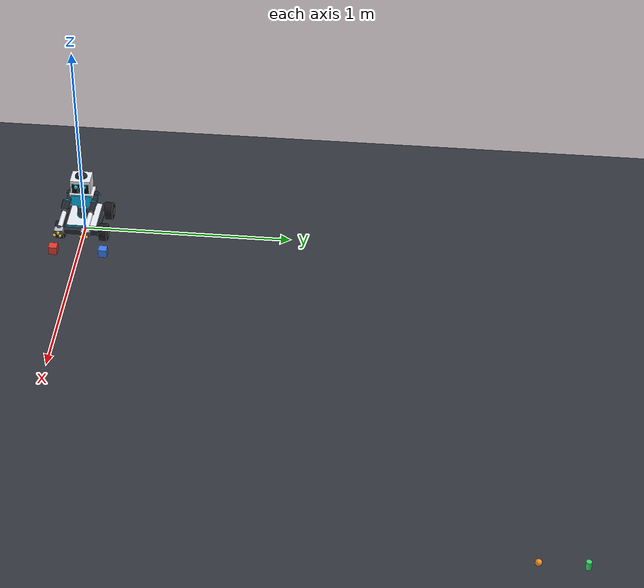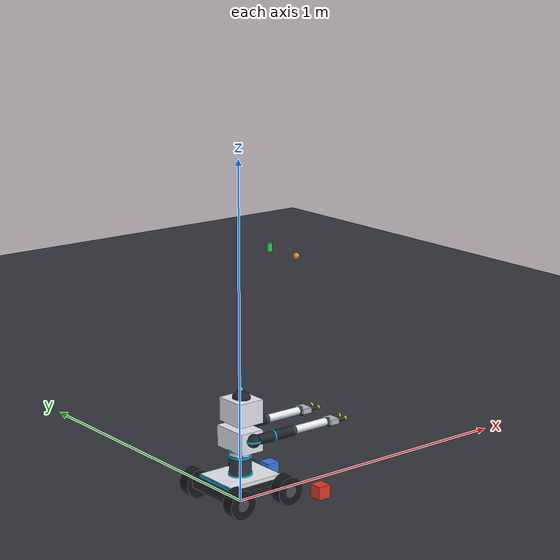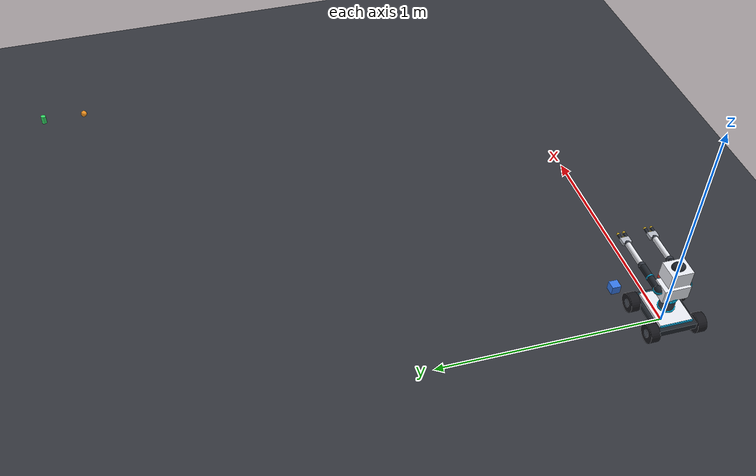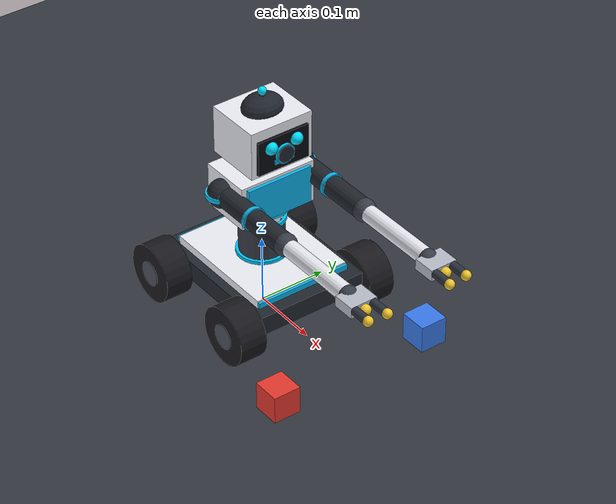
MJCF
<?xml version='1.0' encoding='utf-8'?>
<mujoco model="CARL Primate Scout">
  <option timestep="0.002" gravity="0 0 -9.81" solver="Newton" integrator="implicit" />
  <compiler angle="radian" coordinate="local" inertiafromgeom="true" />

  <default>
    <geom contype="1" conaffinity="1" condim="3" friction="1.2 0.005 0.0001" />
    <joint damping="0.15" frictionloss="0.003" />
    <position ctrllimited="true" forcelimited="true" forcerange="-8.0 8.0" />
    <velocity forcelimited="true" forcerange="-3.0 3.0" />
  </default>

  <asset>
    <!-- === Body Materials === -->
    <material name="shell_white" rgba="0.92 0.93 0.96 1.0" roughness="0.25" specular="0.5" />
    <material name="frame_dark" rgba="0.13 0.15 0.18 1.0" roughness="0.45" specular="0.3" />
    <material name="spine_segment" rgba="0.22 0.24 0.28 1.0" roughness="0.35" />
    <material name="joint_ring" rgba="0.00 0.78 0.98 1.0" emission="1.0" />
    <material name="accent_cyan" rgba="0.05 0.70 0.92 1.0" emission="0.6" />
    <material name="eye_glow" rgba="0.00 0.88 1.00 1.0" emission="2.0" />
    <material name="face_screen" rgba="0.03 0.04 0.06 1.0" roughness="0.05" specular="0.8" />

    <!-- === Hand Materials === -->
    <material name="palm_silver" rgba="0.72 0.74 0.78 1.0" roughness="0.25" specular="0.6" />
    <material name="finger_seg" rgba="0.18 0.20 0.24 1.0" roughness="0.4" />
    <material name="fingertip_gold" rgba="0.95 0.78 0.18 1.0" roughness="0.3" emission="0.15" />

    <!-- === Wheel Materials === -->
    <material name="wheel_rubber" rgba="0.10 0.10 0.12 1.0" roughness="0.95" />
    <material name="wheel_hub" rgba="0.30 0.32 0.36 1.0" roughness="0.35" specular="0.4" />
    <material name="wheel_roller" rgba="0.20 0.22 0.25 1.0" roughness="0.7" />

    <!-- === Environment === -->
    <material name="floor_mat" rgba="0.20 0.21 0.24 1.0" roughness="0.7" specular="0.15" />
    <material name="table_mat" rgba="0.35 0.25 0.18 1.0" roughness="0.8" />
    <material name="obj_blue" rgba="0.22 0.48 0.92 1.0" roughness="0.25" />
    <material name="obj_orange" rgba="0.96 0.58 0.12 1.0" roughness="0.25" />
    <material name="obj_green" rgba="0.20 0.85 0.40 1.0" roughness="0.3" />
    <material name="obj_red" rgba="0.90 0.22 0.18 1.0" roughness="0.25" />
  </asset>

  <!--                          WORLD                                     -->
  <worldbody>
    <light name="key_sun" pos="2 1.5 5" dir="-0.25 -0.2 -1" diffuse="0.92 0.90 0.88" castshadow="true" />
    <light name="fill_cool" pos="-2 -1 3.5" dir="0.3 0.15 -1" diffuse="0.35 0.40 0.50" castshadow="false" />
    <light name="rim_back" pos="0 -3 2" dir="0 0.5 -0.5" diffuse="0.20 0.25 0.30" castshadow="false" />
    <geom name="floor" type="plane" size="6 6 0.1" material="floor_mat" />

    <!-- === Manipulable Objects (on floor within reach) === -->
    <body name="obj_cube_0" pos="0.20 0.12 0.020">
      <freejoint name="fj_cube_0" />
      <geom name="gcube_0" type="box" size="0.020 0.020 0.020" mass="0.04"
            material="obj_blue" contype="4" conaffinity="13" friction="1.8 0.01 0.002" />
    </body>
    <body name="obj_cube_1" pos="0.20 -0.12 0.020">
      <freejoint name="fj_cube_1" />
      <geom name="gcube_1" type="box" size="0.020 0.020 0.020" mass="0.04"
            material="obj_red" contype="4" conaffinity="13" friction="1.8 0.01 0.002" />
    </body>
    <body name="obj_ball_0" pos="2.0 2.2 0.015">
      <freejoint name="fj_ball_0" />
      <geom name="gball_0" type="sphere" size="0.015" mass="0.02"
            material="obj_orange" contype="4" conaffinity="13" friction="1.2 0.01 0.002" />
    </body>
    <body name="obj_cylinder_0" pos="2.0 2.4 0.020">
      <freejoint name="fj_cyl_0" />
      <geom name="gcyl_0" type="cylinder" size="0.012 0.020" mass="0.03"
            material="obj_green" contype="4" conaffinity="13" friction="1.5 0.01 0.002" />
    </body>

    <!--              CARL PRIMATE SCOUT — MAIN BODY                    -->
    <body name="base_platform" pos="0 0 0.058">
      <freejoint name="root_joint" />

      <!-- ── Chassis ────────────────────────────────────────────────── -->
      <geom name="chassis_core" type="box" size="0.11 0.085 0.014"
            material="frame_dark" mass="2.0" contype="1" conaffinity="1" />
      <geom name="chassis_shell" type="box" size="0.09 0.072 0.006" pos="0 0 0.020"
            material="shell_white" mass="0.2" contype="0" conaffinity="0" />
      <!-- Edge accent strips -->
      <geom name="edge_front" type="box" size="0.002 0.072 0.004" pos="0.092 0 0.020"
            material="accent_cyan" contype="0" conaffinity="0" />
      <geom name="edge_back" type="box" size="0.002 0.072 0.004" pos="-0.092 0 0.020"
            material="accent_cyan" contype="0" conaffinity="0" />

      <!-- ── Mecanum Wheels (4 corners) ─────────────────────────────── -->
      <body name="wheel_FL" pos="0.085 0.105 -0.010">
        <joint name="w_fl" type="hinge" axis="0 1 0" damping="0.008" frictionloss="0.001" />
        <geom type="cylinder" size="0.042 0.020" euler="1.5708 0 0"
              material="wheel_rubber" friction="1.6" mass="0.10" contype="1" conaffinity="1" />
        <geom type="cylinder" size="0.018 0.021" euler="1.5708 0 0"
              material="wheel_hub" contype="0" conaffinity="0" />
        <!-- Roller visual accents (suggest mecanum) -->
        <geom type="capsule" fromto="0.030 0 -0.015  -0.030 0 0.015" size="0.005"
              material="wheel_roller" contype="0" conaffinity="0" />
        <geom type="capsule" fromto="-0.015 0 -0.030  0.015 0 0.030" size="0.005"
              material="wheel_roller" contype="0" conaffinity="0" />
      </body>
      <body name="wheel_FR" pos="0.085 -0.105 -0.010">
        <joint name="w_fr" type="hinge" axis="0 1 0" damping="0.008" frictionloss="0.001" />
        <geom type="cylinder" size="0.042 0.020" euler="1.5708 0 0"
              material="wheel_rubber" friction="1.6" mass="0.10" contype="1" conaffinity="1" />
        <geom type="cylinder" size="0.018 0.021" euler="1.5708 0 0"
              material="wheel_hub" contype="0" conaffinity="0" />
        <geom type="capsule" fromto="-0.030 0 -0.015  0.030 0 0.015" size="0.005"
              material="wheel_roller" contype="0" conaffinity="0" />
        <geom type="capsule" fromto="0.015 0 -0.030  -0.015 0 0.030" size="0.005"
              material="wheel_roller" contype="0" conaffinity="0" />
      </body>
      <body name="wheel_RL" pos="-0.085 0.105 -0.010">
        <joint name="w_rl" type="hinge" axis="0 1 0" damping="0.008" frictionloss="0.001" />
        <geom type="cylinder" size="0.042 0.020" euler="1.5708 0 0"
              material="wheel_rubber" friction="1.6" mass="0.10" contype="1" conaffinity="1" />
        <geom type="cylinder" size="0.018 0.021" euler="1.5708 0 0"
              material="wheel_hub" contype="0" conaffinity="0" />
        <geom type="capsule" fromto="-0.030 0 -0.015  0.030 0 0.015" size="0.005"
              material="wheel_roller" contype="0" conaffinity="0" />
        <geom type="capsule" fromto="0.015 0 -0.030  -0.015 0 0.030" size="0.005"
              material="wheel_roller" contype="0" conaffinity="0" />
      </body>
      <body name="wheel_RR" pos="-0.085 -0.105 -0.010">
        <joint name="w_rr" type="hinge" axis="0 1 0" damping="0.008" frictionloss="0.001" />
        <geom type="cylinder" size="0.042 0.020" euler="1.5708 0 0"
              material="wheel_rubber" friction="1.6" mass="0.10" contype="1" conaffinity="1" />
        <geom type="cylinder" size="0.018 0.021" euler="1.5708 0 0"
              material="wheel_hub" contype="0" conaffinity="0" />
        <geom type="capsule" fromto="0.030 0 -0.015  -0.030 0 0.015" size="0.005"
              material="wheel_roller" contype="0" conaffinity="0" />
        <geom type="capsule" fromto="-0.015 0 -0.030  0.015 0 0.030" size="0.005"
              material="wheel_roller" contype="0" conaffinity="0" />
      </body>

      <!--                   FLEXIBLE 3-VERTEBRA SPINE                  -->
      <body name="spine_1" pos="0 0 0.028">
        <joint name="spine1_pitch" type="hinge" axis="0 1 0" range="-0.40 0.40" stiffness="4.0" damping="0.6" />
        <joint name="spine1_roll"  type="hinge" axis="1 0 0" range="-0.30 0.30" stiffness="4.0" damping="0.6" />
        <!-- Vertebra segment -->
        <geom type="capsule" fromto="0 0 0  0 0 0.048" size="0.032" material="spine_segment" mass="0.18" contype="1" conaffinity="1" />
        <!-- Glow ring at joint -->
        <geom type="cylinder" size="0.036 0.003" pos="0 0 0" material="joint_ring" contype="0" conaffinity="0" />

        <body name="spine_2" pos="0 0 0.054">
          <joint name="spine2_pitch" type="hinge" axis="0 1 0" range="-0.35 0.35" stiffness="3.5" damping="0.5" />
          <joint name="spine2_yaw"   type="hinge" axis="0 0 1" range="-0.50 0.50" stiffness="3.0" damping="0.5" />
          <geom type="capsule" fromto="0 0 0  0 0 0.048" size="0.030" material="shell_white" mass="0.15" contype="1" conaffinity="1" />
          <geom type="cylinder" size="0.034 0.003" pos="0 0 0" material="joint_ring" contype="0" conaffinity="0" />

          <body name="spine_3" pos="0 0 0.054">
            <joint name="spine3_pitch" type="hinge" axis="0 1 0" range="-0.40 0.40" stiffness="3.5" damping="0.5" />
            <joint name="spine3_roll"  type="hinge" axis="1 0 0" range="-0.30 0.30" stiffness="3.0" damping="0.5" />
            <!-- Chest / shoulder platform -->
            <geom name="chest" type="box" size="0.038 0.058 0.032" material="shell_white" mass="0.30" contype="1" conaffinity="1" />
            <geom name="chest_accent" type="box" size="0.005 0.050 0.028" pos="0.038 0 0" material="accent_cyan" contype="0" conaffinity="0" />
            <geom type="cylinder" size="0.040 0.003" pos="0 0 -0.032" material="joint_ring" contype="0" conaffinity="0" />

            <!--                   LEFT ARM (8 DOF)                     -->
            <body name="shoulder_mount_L" pos="0 0.063 0.008">
              <joint name="shoulder_yaw_L" type="hinge" axis="0 0 1" range="-0.3 2.2" damping="2.5" />
              <geom type="sphere" size="0.020" material="frame_dark" mass="0.02" contype="1" conaffinity="1" />
              <geom type="cylinder" size="0.022 0.003" material="joint_ring" contype="0" conaffinity="0" />

              <body name="upper_arm_L" pos="0 0 0">
                <joint name="shoulder_pitch_L" type="hinge" axis="0 1 0" range="-2.4 2.4" damping="2.5" />
                <geom name="upperarm_L" type="capsule" fromto="0 0 0  0.14 0 0" size="0.015"
                      material="frame_dark" mass="0.10" contype="1" conaffinity="1" />
                <!-- Bicep accent -->
                <geom type="cylinder" size="0.017 0.003" pos="0.07 0 0" euler="0 1.5708 0"
                      material="accent_cyan" contype="0" conaffinity="0" />

                <body name="forearm_L" pos="0.14 0 0">
                  <joint name="elbow_L" type="hinge" axis="0 1 0" range="-2.8 0" damping="2.0" />
                  <geom type="sphere" size="0.016" material="spine_segment" mass="0.01" contype="1" conaffinity="1" />
                  <geom name="forearm_L_geom" type="capsule" fromto="0 0 0  0.13 0 0" size="0.012"
                        material="shell_white" mass="0.07" contype="1" conaffinity="1" />

                  <!-- === WRIST + HAND (Left) === -->
                  <body name="wrist_L" pos="0.13 0 0">
                    <joint name="wrist_roll_L" type="hinge" axis="1 0 0" range="-1.57 1.57" damping="1.0" />
                    <geom type="sphere" size="0.010" material="spine_segment" mass="0.008" contype="0" conaffinity="0" />

                    <body name="wrist_flex_L" pos="0 0 0">
                      <joint name="wrist_pitch_L" type="hinge" axis="0 1 0" range="-1.3 1.3" damping="1.0" />
                      <geom type="sphere" size="0.013" material="spine_segment" contype="0" conaffinity="0" />

                      <!-- Palm -->
                      <geom name="palm_L" type="box" size="0.016 0.020 0.008" pos="0.016 0 0"
                            material="palm_silver" mass="0.025" contype="1" conaffinity="1" friction="2.0 0.01 0.001" />

                      <!-- ─── Thumb (opposes from below) ─── -->
                      <body name="thumb_L" pos="0.012 0 -0.012">
                        <joint name="thumb_L_knuckle" type="hinge" axis="0 1 0" range="0 1.4" damping="0.6" />
                        <geom type="capsule" fromto="0 0 0  0.022 0 0.010" size="0.007"
                              material="finger_seg" mass="0.008" contype="1" conaffinity="1" friction="2.0 0.01 0.001" />
                        <geom name="thumb_L_tip" type="sphere" size="0.008" pos="0.022 0 0.010"
                              material="fingertip_gold" mass="0.003" contype="1" conaffinity="1" friction="2.5 0.01 0.001" />
                        <site name="touch_thumb_L" pos="0.022 0 0.010" size="0.007" rgba="1 0.3 0 0.25" />
                      </body>

                      <!-- ─── Index Finger (top) ─── -->
                      <body name="index_L" pos="0.032 0.014 0.002">
                        <joint name="index_L_knuckle" type="hinge" axis="0 1 0" range="-1.4 0" damping="0.6" />
                        <geom type="capsule" fromto="0 0 0  0.026 0 0" size="0.006"
                              material="finger_seg" mass="0.006" contype="1" conaffinity="1" friction="2.0 0.01 0.001" />
                        <geom name="index_L_tip" type="sphere" size="0.007" pos="0.026 0 0"
                              material="fingertip_gold" mass="0.003" contype="1" conaffinity="1" friction="2.5 0.01 0.001" />
                        <site name="touch_index_L" pos="0.026 0 0" size="0.006" rgba="1 0.3 0 0.25" />
                      </body>

                      <!-- ─── Middle Finger (bottom) ─── -->
                      <body name="middle_L" pos="0.032 -0.014 0.002">
                        <joint name="middle_L_knuckle" type="hinge" axis="0 1 0" range="-1.4 0" damping="0.6" />
                        <geom type="capsule" fromto="0 0 0  0.028 0 0" size="0.006"
                              material="finger_seg" mass="0.006" contype="1" conaffinity="1" friction="2.0 0.01 0.001" />
                        <geom name="middle_L_tip" type="sphere" size="0.007" pos="0.028 0 0"
                              material="fingertip_gold" mass="0.003" contype="1" conaffinity="1" friction="2.5 0.01 0.001" />
                        <site name="touch_middle_L" pos="0.028 0 0" size="0.006" rgba="1 0.3 0 0.25" />
                      </body>

                    </body>
                  </body>
                </body>
              </body>
            </body>

            <!--                   RIGHT ARM (8 DOF, mirrored)          -->
            <body name="shoulder_mount_R" pos="0 -0.063 0.008">
              <joint name="shoulder_yaw_R" type="hinge" axis="0 0 1" range="-2.2 0.3" damping="2.5" />
              <geom type="sphere" size="0.020" material="frame_dark" mass="0.02" contype="1" conaffinity="1" />
              <geom type="cylinder" size="0.022 0.003" material="joint_ring" contype="0" conaffinity="0" />

              <body name="upper_arm_R" pos="0 0 0">
                <joint name="shoulder_pitch_R" type="hinge" axis="0 1 0" range="-2.4 2.4" damping="2.5" />
                <geom name="upperarm_R" type="capsule" fromto="0 0 0  0.14 0 0" size="0.015"
                      material="frame_dark" mass="0.10" contype="1" conaffinity="1" />
                <geom type="cylinder" size="0.017 0.003" pos="0.07 0 0" euler="0 1.5708 0"
                      material="accent_cyan" contype="0" conaffinity="0" />

                <body name="forearm_R" pos="0.14 0 0">
                  <joint name="elbow_R" type="hinge" axis="0 1 0" range="-2.8 0" damping="2.0" />
                  <geom type="sphere" size="0.016" material="spine_segment" mass="0.01" contype="1" conaffinity="1" />
                  <geom name="forearm_R_geom" type="capsule" fromto="0 0 0  0.13 0 0" size="0.012"
                        material="shell_white" mass="0.07" contype="1" conaffinity="1" />

                  <!-- === WRIST + HAND (Right) === -->
                  <body name="wrist_R" pos="0.13 0 0">
                    <joint name="wrist_roll_R" type="hinge" axis="1 0 0" range="-1.57 1.57" damping="1.0" />
                    <geom type="sphere" size="0.010" material="spine_segment" mass="0.008" contype="0" conaffinity="0" />

                    <body name="wrist_flex_R" pos="0 0 0">
                      <joint name="wrist_pitch_R" type="hinge" axis="0 1 0" range="-1.3 1.3" damping="1.0" />
                      <geom type="sphere" size="0.013" material="spine_segment" contype="0" conaffinity="0" />

                      <geom name="palm_R" type="box" size="0.016 0.020 0.008" pos="0.016 0 0"
                            material="palm_silver" mass="0.025" contype="1" conaffinity="1" friction="2.0 0.01 0.001" />

                      <!-- ─── Thumb (opposes from below) ─── -->
                      <body name="thumb_R" pos="0.012 0 -0.012">
                        <joint name="thumb_R_knuckle" type="hinge" axis="0 1 0" range="0 1.4" damping="0.6" />
                        <geom type="capsule" fromto="0 0 0  0.022 0 0.010" size="0.007"
                              material="finger_seg" mass="0.008" contype="1" conaffinity="1" friction="2.0 0.01 0.001" />
                        <geom name="thumb_R_tip" type="sphere" size="0.008" pos="0.022 0 0.010"
                              material="fingertip_gold" mass="0.003" contype="1" conaffinity="1" friction="2.5 0.01 0.001" />
                        <site name="touch_thumb_R" pos="0.022 0 0.010" size="0.007" rgba="1 0.3 0 0.25" />
                      </body>

                      <!-- ─── Index Finger ─── -->
                      <body name="index_R" pos="0.032 -0.014 0.002">
                        <joint name="index_R_knuckle" type="hinge" axis="0 1 0" range="-1.4 0" damping="0.6" />
                        <geom type="capsule" fromto="0 0 0  0.026 0 0" size="0.006"
                              material="finger_seg" mass="0.006" contype="1" conaffinity="1" friction="2.0 0.01 0.001" />
                        <geom name="index_R_tip" type="sphere" size="0.007" pos="0.026 0 0"
                              material="fingertip_gold" mass="0.003" contype="1" conaffinity="1" friction="2.5 0.01 0.001" />
                        <site name="touch_index_R" pos="0.026 0 0" size="0.006" rgba="1 0.3 0 0.25" />
                      </body>

                      <!-- ─── Middle Finger ─── -->
                      <body name="middle_R" pos="0.032 0.014 0.002">
                        <joint name="middle_R_knuckle" type="hinge" axis="0 1 0" range="-1.4 0" damping="0.6" />
                        <geom type="capsule" fromto="0 0 0  0.028 0 0" size="0.006"
                              material="finger_seg" mass="0.006" contype="1" conaffinity="1" friction="2.0 0.01 0.001" />
                        <geom name="middle_R_tip" type="sphere" size="0.007" pos="0.028 0 0"
                              material="fingertip_gold" mass="0.003" contype="8" conaffinity="12" friction="2.5 0.01 0.001" />
                        <site name="touch_middle_R" pos="0.028 0 0" size="0.006" rgba="1 0.3 0 0.25" />
                      </body>

                    </body>
                  </body>
                </body>
              </body>
            </body>

            <!--                  NECK + EXPRESSIVE HEAD                 -->
            <body name="neck_base" pos="0.005 0 0.038">
              <joint name="neck_tilt" type="hinge" axis="0 1 0" range="-0.65 0.75" stiffness="0.6" damping="0.15" />
              <geom type="capsule" fromto="0 0 0  0 0 0.035" size="0.014" material="frame_dark" mass="0.03" contype="1" conaffinity="1" />

              <body name="head" pos="0 0 0.045">
                <joint name="head_pan" type="hinge" axis="0 0 1" range="-1.6 1.6" damping="0.12" />
                <!-- Head shell -->
                <geom name="head_shell" type="box" size="0.042 0.048 0.035"
                      material="shell_white" mass="0.10" contype="1" conaffinity="1" />
                <!-- Face visor (screen area) -->
                <geom name="face_visor" type="box" size="0.004 0.040 0.025" pos="0.042 0 -0.005"
                      material="face_screen" contype="0" conaffinity="0" />
                <!-- Left Eye -->
                <geom name="eye_L" type="sphere" size="0.009" pos="0.046 0.020 0.006"
                      material="eye_glow" contype="0" conaffinity="0" />
                <!-- Right Eye -->
                <geom name="eye_R" type="sphere" size="0.009" pos="0.046 -0.020 0.006"
                      material="eye_glow" contype="0" conaffinity="0" />
                <!-- "Mouth" indicator LED -->
                <geom name="mouth_led" type="box" size="0.003 0.015 0.003" pos="0.045 0 -0.018"
                      material="accent_cyan" contype="0" conaffinity="0" />
                <!-- Sensor dome on top -->
                <geom name="sensor_dome" type="ellipsoid" size="0.025 0.030 0.018" pos="0 0 0.038"
                      material="frame_dark" contype="0" conaffinity="0" />
                <!-- Camera lens -->
                <geom name="camera_lens" type="cylinder" size="0.012 0.005" pos="0.047 0 -0.008"
                      euler="0 1.5708 0" material="frame_dark" contype="0" conaffinity="0" />
                <geom name="camera_ring" type="cylinder" size="0.014 0.002" pos="0.049 0 -0.008"
                      euler="0 1.5708 0" material="joint_ring" contype="0" conaffinity="0" />
                <!-- Antenna / lidar nub -->
                <geom name="antenna" type="capsule" fromto="0 0 0.035  0 0 0.060" size="0.004"
                      material="frame_dark" contype="0" conaffinity="0" />
                <geom name="antenna_tip" type="sphere" size="0.006" pos="0 0 0.062"
                      material="eye_glow" contype="0" conaffinity="0" />
              </body>
            </body>

          </body> <!-- spine_3 -->
        </body> <!-- spine_2 -->
      </body> <!-- spine_1 -->
    </body> <!-- base_platform -->
  </worldbody>

  <!--                         ACTUATORS                                  -->
  <actuator>
    <!-- ── Mecanum Wheels (velocity-controlled) ── -->
    <velocity name="act_w_fl" joint="w_fl" kv="0.6" forcelimited="true" forcerange="-0.5 0.5" ctrllimited="true" ctrlrange="-40 40" />
    <velocity name="act_w_fr" joint="w_fr" kv="0.6" forcelimited="true" forcerange="-0.5 0.5" ctrllimited="true" ctrlrange="-40 40" />
    <velocity name="act_w_rl" joint="w_rl" kv="0.6" forcelimited="true" forcerange="-0.5 0.5" ctrllimited="true" ctrlrange="-40 40" />
    <velocity name="act_w_rr" joint="w_rr" kv="0.6" forcelimited="true" forcerange="-0.5 0.5" ctrllimited="true" ctrlrange="-40 40" />

    <!-- ── Flexible Spine (6 DOF) ── -->
    <position name="act_spine1_pitch" joint="spine1_pitch" kp="5.0" ctrlrange="-0.40 0.40" />
    <position name="act_spine1_roll"  joint="spine1_roll"  kp="5.0" ctrlrange="-0.30 0.30" />
    <position name="act_spine2_pitch" joint="spine2_pitch" kp="4.0" ctrlrange="-0.35 0.35" />
    <position name="act_spine2_yaw"   joint="spine2_yaw"   kp="4.0" ctrlrange="-0.50 0.50" />
    <position name="act_spine3_pitch" joint="spine3_pitch" kp="4.0" ctrlrange="-0.40 0.40" />
    <position name="act_spine3_roll"  joint="spine3_roll"  kp="4.0" ctrlrange="-0.30 0.30" />

    <!-- ── Neck + Head (2 DOF) ── -->
    <position name="act_neck_tilt" joint="neck_tilt" kp="0.8" ctrlrange="-0.65 0.75" />
    <position name="act_head_pan"  joint="head_pan"  kp="0.6" ctrlrange="-1.6 1.6" />

    <!-- ── Left Arm (5 DOF positioning + 3 DOF fingers = 8 DOF) ── -->
    <position name="act_shoulder_yaw_L"   joint="shoulder_yaw_L"   kp="140.0" ctrlrange="-0.3 2.2" />
    <position name="act_shoulder_pitch_L" joint="shoulder_pitch_L" kp="140.0" ctrlrange="-2.4 2.4" />
    <position name="act_elbow_L"          joint="elbow_L"          kp="120.0" ctrlrange="-2.8 0" />
    <position name="act_wrist_roll_L"     joint="wrist_roll_L"     kp="60.0"  ctrlrange="-1.57 1.57" />
    <position name="act_wrist_pitch_L"    joint="wrist_pitch_L"    kp="60.0"  ctrlrange="-1.3 1.3" />
    <position name="act_thumb_L"          joint="thumb_L_knuckle"  kp="35.0"  ctrlrange="0 1.4" forcelimited="true" forcerange="-1.5 1.5" />
    <position name="act_index_L"          joint="index_L_knuckle"  kp="35.0"  ctrlrange="-1.4 0" forcelimited="true" forcerange="-1.5 1.5" />
    <position name="act_middle_L"         joint="middle_L_knuckle" kp="35.0"  ctrlrange="-1.4 0" forcelimited="true" forcerange="-1.5 1.5" />

    <!-- ── Right Arm (5 DOF positioning + 3 DOF fingers = 8 DOF) ── -->
    <position name="act_shoulder_yaw_R"   joint="shoulder_yaw_R"   kp="140.0" ctrlrange="-2.2 0.3" />
    <position name="act_shoulder_pitch_R" joint="shoulder_pitch_R" kp="140.0" ctrlrange="-2.4 2.4" />
    <position name="act_elbow_R"          joint="elbow_R"          kp="120.0" ctrlrange="-2.8 0" />
    <position name="act_wrist_roll_R"     joint="wrist_roll_R"     kp="60.0"  ctrlrange="-1.57 1.57" />
    <position name="act_wrist_pitch_R"    joint="wrist_pitch_R"    kp="60.0"  ctrlrange="-1.3 1.3" />
    <position name="act_thumb_R"          joint="thumb_R_knuckle"  kp="35.0"  ctrlrange="0 1.4" forcelimited="true" forcerange="-1.5 1.5" />
    <position name="act_index_R"          joint="index_R_knuckle"  kp="35.0"  ctrlrange="-1.4 0" forcelimited="true" forcerange="-1.5 1.5" />
    <position name="act_middle_R"         joint="middle_R_knuckle" kp="35.0"  ctrlrange="-1.4 0" forcelimited="true" forcerange="-1.5 1.5" />
  </actuator>

  <!--                          SENSORS                                   -->
  <sensor>
    <!-- Fingertip touch sensors (6 total) -->
    <touch name="touch_thumb_L_s"  site="touch_thumb_L" />
    <touch name="touch_index_L_s"  site="touch_index_L" />
    <touch name="touch_middle_L_s" site="touch_middle_L" />
    <touch name="touch_thumb_R_s"  site="touch_thumb_R" />
    <touch name="touch_index_R_s"  site="touch_index_R" />
    <touch name="touch_middle_R_s" site="touch_middle_R" />
  </sensor>

  <contact>
    <exclude body1="spine_3" body2="upper_arm_L" />
    <exclude body1="spine_3" body2="upper_arm_R" />
  </contact>

</mujoco>
